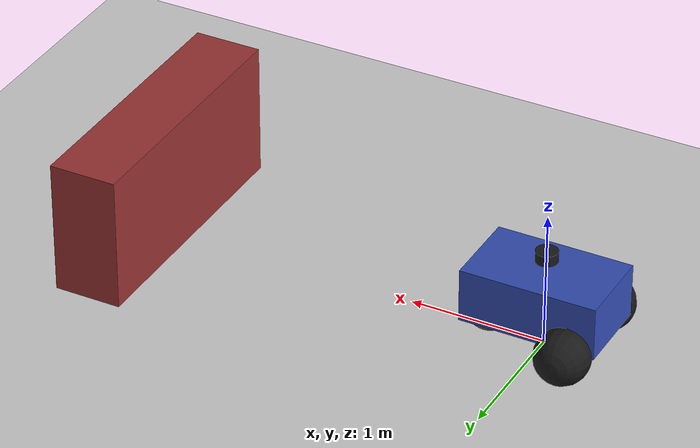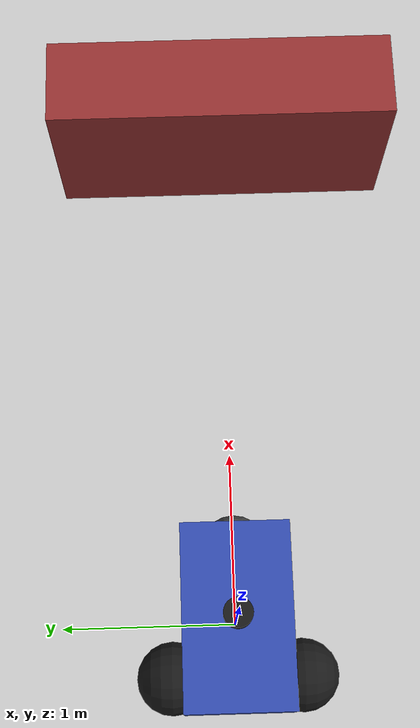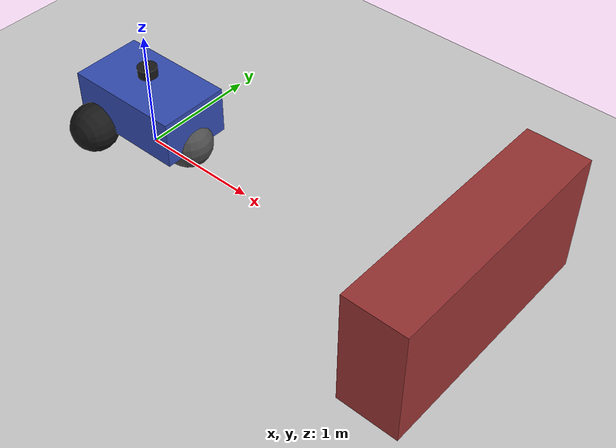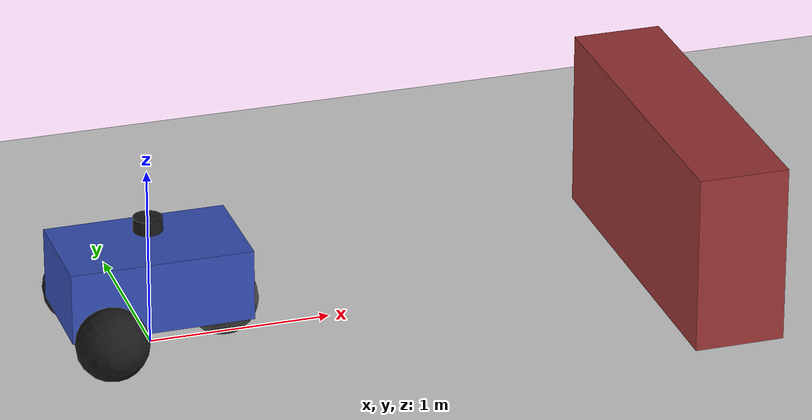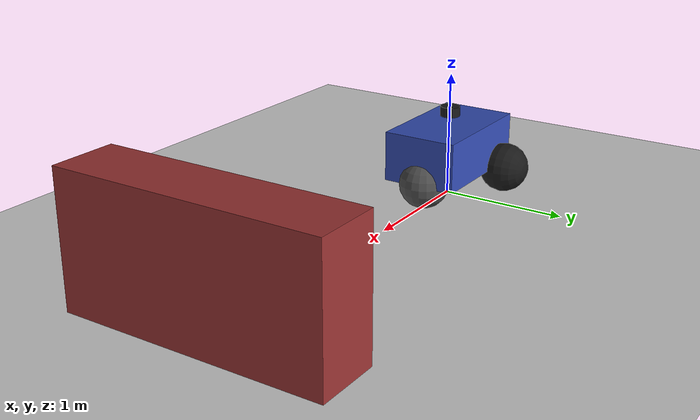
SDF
<?xml version="1.0" ?>
<sdf version="1.8">
  <world name="spike">
    <physics name="1ms" type="ignored">
      <max_step_size>0.001</max_step_size>
      <real_time_factor>1.0</real_time_factor>
    </physics>

    <plugin filename="gz-sim-physics-system" name="gz::sim::systems::Physics"/>
    <plugin filename="gz-sim-user-commands-system" name="gz::sim::systems::UserCommands"/>
    <plugin filename="gz-sim-scene-broadcaster-system" name="gz::sim::systems::SceneBroadcaster"/>
    <plugin filename="gz-sim-sensors-system" name="gz::sim::systems::Sensors">
      <render_engine>ogre2</render_engine>
    </plugin>

    <light type="directional" name="sun">
      <cast_shadows>false</cast_shadows>
      <pose>0 0 10 0 0 0</pose>
      <diffuse>0.8 0.8 0.8 1</diffuse>
      <specular>0.2 0.2 0.2 1</specular>
      <direction>-0.5 0.1 -0.9</direction>
    </light>

    <model name="ground_plane">
      <static>true</static>
      <link name="link">
        <collision name="collision">
          <geometry><plane><normal>0 0 1</normal><size>20 20</size></plane></geometry>
        </collision>
        <visual name="visual">
          <geometry><plane><normal>0 0 1</normal><size>20 20</size></plane></geometry>
          <material><ambient>0.8 0.8 0.8 1</ambient><diffuse>0.8 0.8 0.8 1</diffuse></material>
        </visual>
      </link>
    </model>

    <!-- obstacle in front so the lidar returns finite (non-inf) ranges -->
    <model name="obstacle">
      <static>true</static>
      <pose>3.0 0 0.5 0 0 0</pose>
      <link name="link">
        <collision name="collision">
          <geometry><box><size>0.5 2.0 1.0</size></box></geometry>
        </collision>
        <visual name="visual">
          <geometry><box><size>0.5 2.0 1.0</size></box></geometry>
          <material><ambient>0.6 0.2 0.2 1</ambient><diffuse>0.6 0.2 0.2 1</diffuse></material>
        </visual>
      </link>
    </model>

    <model name="bot1" canonical_link="base_link">
      <pose relative_to="world">0 0 0 0 0 0</pose>

      <link name="base_link">
        <pose relative_to="__model__">0 0 0.4 0 0 0</pose>
        <inertial>
          <mass>1.14395</mass>
          <inertia>
            <ixx>0.126164</ixx><ixy>0</ixy><ixz>0</ixz>
            <iyy>0.416519</iyy><iyz>0</iyz><izz>0.481014</izz>
          </inertia>
        </inertial>
        <collision name="collision">
          <geometry><box><size>1.0 0.6 0.4</size></box></geometry>
        </collision>
        <visual name="visual">
          <geometry><box><size>1.0 0.6 0.4</size></box></geometry>
          <material><ambient>0.2 0.3 0.7 1</ambient><diffuse>0.2 0.3 0.7 1</diffuse></material>
        </visual>
      </link>

      <link name="lidar_link">
        <pose relative_to="base_link">0 0 0.3 0 0 0</pose>
        <inertial>
          <mass>0.05</mass>
          <inertia><ixx>1e-5</ixx><ixy>0</ixy><ixz>0</ixz><iyy>1e-5</iyy><iyz>0</iyz><izz>1e-5</izz></inertia>
        </inertial>
        <visual name="visual">
          <geometry><cylinder><radius>0.08</radius><length>0.08</length></cylinder></geometry>
          <material><ambient>0.1 0.1 0.1 1</ambient><diffuse>0.1 0.1 0.1 1</diffuse></material>
        </visual>
        <sensor name="lidar" type="gpu_lidar">
          <pose>0 0 0 0 0 0</pose>
          <topic>/bot1/scan</topic>
          <gz_frame_id>bot1/lidar_link</gz_frame_id>
          <update_rate>10</update_rate>
          <always_on>1</always_on>
          <visualize>true</visualize>
          <lidar>
            <scan>
              <horizontal>
                <samples>360</samples>
                <resolution>1</resolution>
                <min_angle>-3.14159</min_angle>
                <max_angle>3.14159</max_angle>
              </horizontal>
              <vertical>
                <samples>1</samples>
                <resolution>1</resolution>
                <min_angle>0</min_angle>
                <max_angle>0</max_angle>
              </vertical>
            </scan>
            <range>
              <min>0.08</min>
              <max>12.0</max>
              <resolution>0.01</resolution>
            </range>
          </lidar>
        </sensor>
      </link>

      <link name="left_wheel">
        <pose relative_to="base_link">-0.3 0.36 -0.2 -1.5707 0 0</pose>
        <inertial>
          <mass>1.0</mass>
          <inertia><ixx>0.0435</ixx><ixy>0</ixy><ixz>0</ixz><iyy>0.0435</iyy><iyz>0</iyz><izz>0.08</izz></inertia>
        </inertial>
        <collision name="collision">
          <geometry><sphere><radius>0.2</radius></sphere></geometry>
        </collision>
        <visual name="visual">
          <geometry><sphere><radius>0.2</radius></sphere></geometry>
          <material><ambient>0.1 0.1 0.1 1</ambient><diffuse>0.1 0.1 0.1 1</diffuse></material>
        </visual>
      </link>

      <link name="right_wheel">
        <pose relative_to="base_link">-0.3 -0.36 -0.2 -1.5707 0 0</pose>
        <inertial>
          <mass>1.0</mass>
          <inertia><ixx>0.0435</ixx><ixy>0</ixy><ixz>0</ixz><iyy>0.0435</iyy><iyz>0</iyz><izz>0.08</izz></inertia>
        </inertial>
        <collision name="collision">
          <geometry><sphere><radius>0.2</radius></sphere></geometry>
        </collision>
        <visual name="visual">
          <geometry><sphere><radius>0.2</radius></sphere></geometry>
          <material><ambient>0.1 0.1 0.1 1</ambient><diffuse>0.1 0.1 0.1 1</diffuse></material>
        </visual>
      </link>

      <link name="caster">
        <pose relative_to="base_link">0.4 0 -0.2 0 0 0</pose>
        <inertial>
          <mass>0.5</mass>
          <inertia><ixx>0.008</ixx><ixy>0</ixy><ixz>0</ixz><iyy>0.008</iyy><iyz>0</iyz><izz>0.008</izz></inertia>
        </inertial>
        <collision name="collision">
          <geometry><sphere><radius>0.2</radius></sphere></geometry>
          <surface><friction><ode><mu>0.001</mu><mu2>0.001</mu2></ode></friction></surface>
        </collision>
        <visual name="visual">
          <geometry><sphere><radius>0.2</radius></sphere></geometry>
          <material><ambient>0.3 0.3 0.3 1</ambient><diffuse>0.3 0.3 0.3 1</diffuse></material>
        </visual>
      </link>

      <joint name="lidar_joint" type="fixed">
        <parent>base_link</parent>
        <child>lidar_link</child>
      </joint>

      <joint name="left_wheel_joint" type="revolute">
        <pose relative_to="left_wheel"/>
        <parent>base_link</parent>
        <child>left_wheel</child>
        <axis>
          <xyz expressed_in="__model__">0 1 0</xyz>
          <limit><lower>-1.79769e+308</lower><upper>1.79769e+308</upper></limit>
        </axis>
      </joint>

      <joint name="right_wheel_joint" type="revolute">
        <pose relative_to="right_wheel"/>
        <parent>base_link</parent>
        <child>right_wheel</child>
        <axis>
          <xyz expressed_in="__model__">0 1 0</xyz>
          <limit><lower>-1.79769e+308</lower><upper>1.79769e+308</upper></limit>
        </axis>
      </joint>

      <joint name="caster_joint" type="ball">
        <parent>base_link</parent>
        <child>caster</child>
      </joint>

      <plugin filename="gz-sim-diff-drive-system" name="gz::sim::systems::DiffDrive">
        <left_joint>left_wheel_joint</left_joint>
        <right_joint>right_wheel_joint</right_joint>
        <wheel_separation>1.2</wheel_separation>
        <wheel_radius>0.2</wheel_radius>
        <topic>/bot1/cmd_vel</topic>
        <odom_topic>/bot1/odom</odom_topic>
        <frame_id>bot1/odom</frame_id>
        <child_frame_id>bot1/base_link</child_frame_id>
        <odom_publish_frequency>30</odom_publish_frequency>
      </plugin>
    </model>
  </world>
</sdf>
